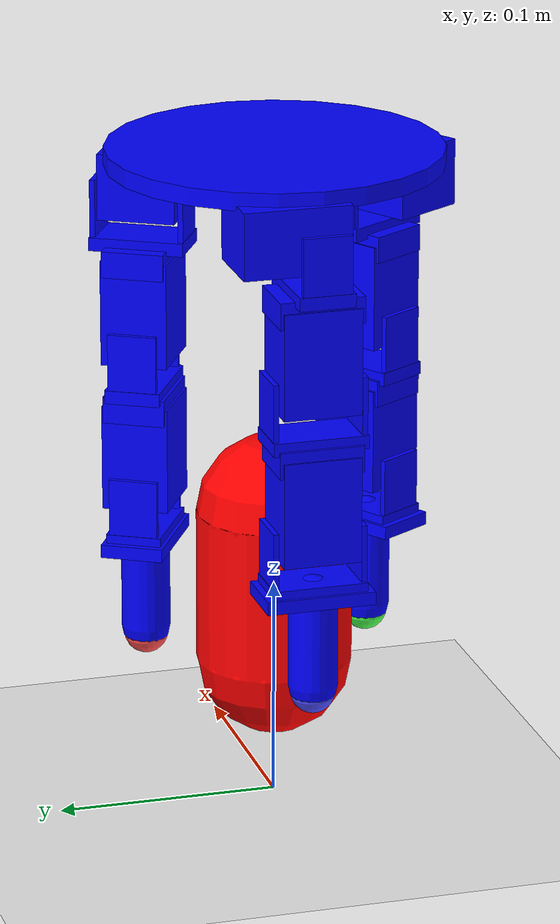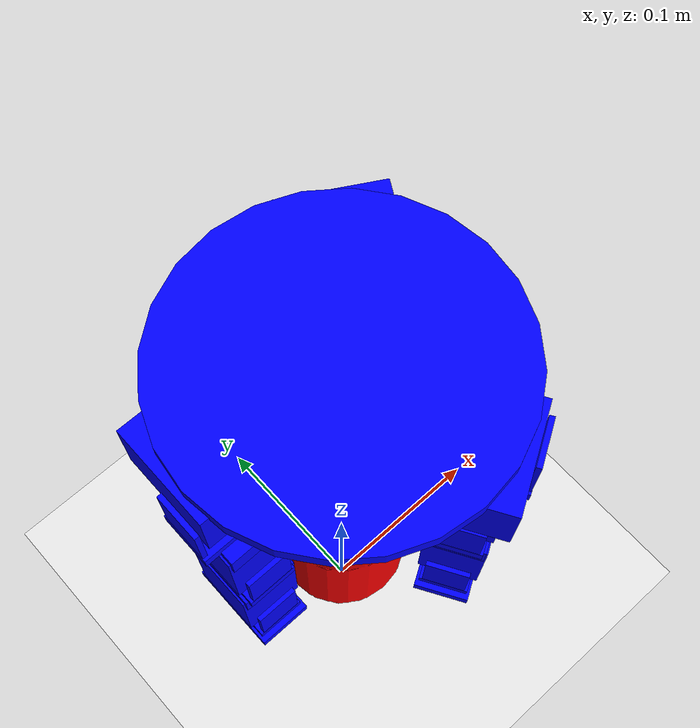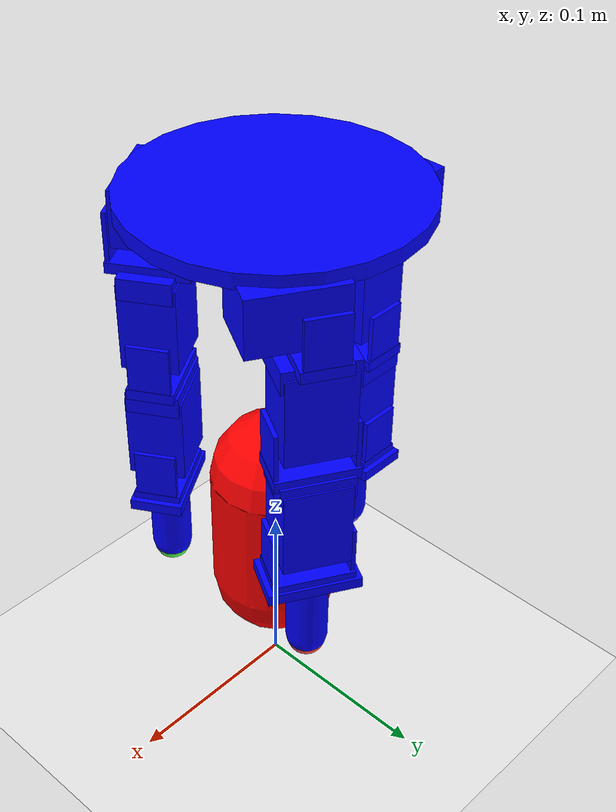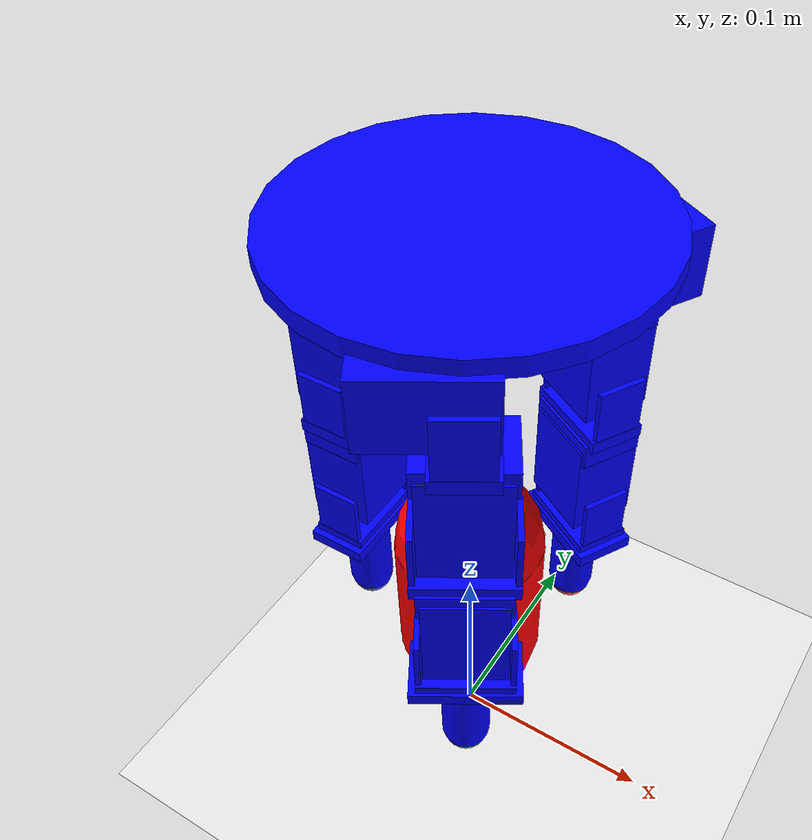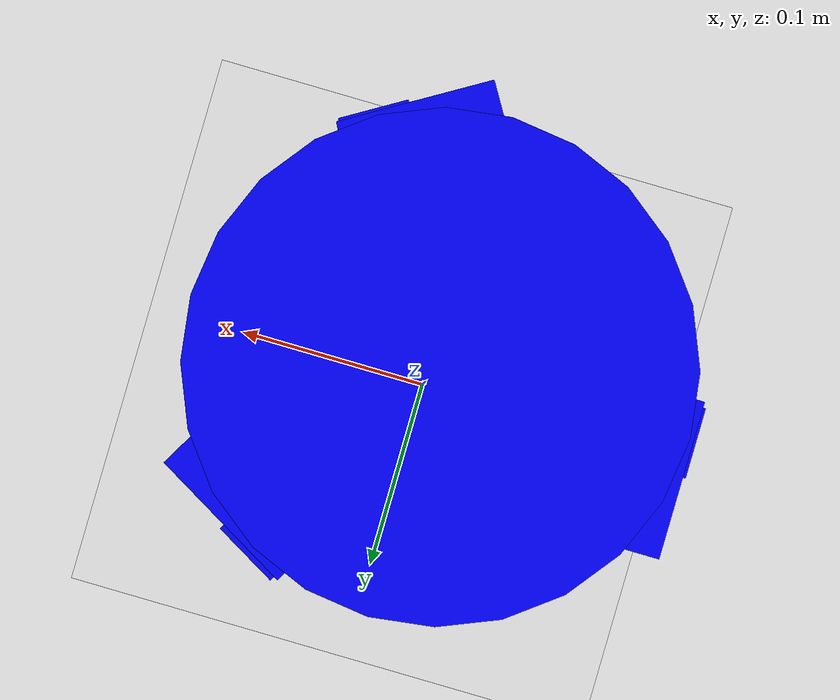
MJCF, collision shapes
<mujoco model="dclaw3xh">
  <compiler meshdir="."/>
  <include file="assets/dependencies3xh.xml"/>
  <include file="../scenes/basic_scene.xml"/>

  <worldbody>
    <body name="mount" pos="0 0 .30">
      <include file="assets/chain3xh.xml"/>

      <geom name="red_box" pos="0 0 -0.2" type="capsule"  size=".035 .035 .035" rgba="1 0 0 1" mass=".002" />
    </body>
  </worldbody>
</mujoco>

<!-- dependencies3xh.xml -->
<mujocoinclude>
  <compiler angle="radian" inertiafromgeom="auto" inertiagrouprange="3 5"/>
  <option integrator="RK4" timestep="0.001" iterations="50" tolerance="1e-10" jacobian="dense" cone="elliptic">
    <flag contact="enable"/>
  </option>
  <asset>
    <mesh name="xh28" file="../dclaw/meshes/xh_base_high_poly.stl" scale=".001 .001 .001"/>
    <mesh name="acrylic_circle" file="../dclaw/meshes/acrylic_circle.stl" scale=".1 .1 .1"/>
    <mesh name="plastic_finger" file="../dclaw/meshes/xh_finger_tip.stl" scale=".001 .001 .001"/>
    <mesh name="metal_clamping" file="../dclaw/meshes/xh_clamping_high_poly.stl" scale=".001 .001 .001"/>
    <mesh name="metal_clamping_small" file="../dclaw/meshes/xh_clamping_small_high_poly.stl" scale=".001 .001 .001"/>
    <mesh name="plastic_top" file="../dclaw/meshes/xh_white_top_high_poly.stl" scale=".001 .001 .001"/>
    <mesh name="xh28_hull" file="../dclaw/meshes/xh_base_hull.stl" scale=".001 .001 .001"/>
    <mesh name="xh28_hull_top" file="../dclaw/meshes/xh_base_hull_top.stl" scale=".001 .001 .001"/>
  </asset>
  <default>
    <default class="dclaw3xh">
      <joint limited="true" damping=".1" armature="0.001"/>
      <geom contype="0" conaffinity="0" condim="4" group="1" margin="0.0005" material="metal_black" type="mesh"/>
      <motor ctrlrange="-1.57 1.57" ctrllimited="true"/>
      <site group="1"/>
      <default class="overlay">
        <geom contype="0" conaffinity="0" group="3" type="mesh" material="greenish"/>
        <joint damping="100" frictionloss="100" armature="0"/>
        <site group="3"/>
      </default>
      <default class="phy_metal">
        <geom contype="1" conaffinity="1" group="4" type="mesh" rgba="0.0 0.0 1.0 .3"/>
        <site group="4"/>
      </default>
      <default class="phy_plastic">
        <geom contype="1" conaffinity="1" group="4" type="mesh" rgba="0.0 0.0 1.0 .3" friction=".2 0.005 0.0001"/>
        <site group="4"/>
      </default>
    </default>
  </default>
  <asset>
    <material name="metal_black" specular="1" shininess="1" rgba="0.2 0.2 0.2 1.0"/>
    <material name="metal_grey" specular="1" shininess="1" rgba="0.5 0.5 0.5 1.0"/>
    <material name="plastic" specular="0.3" shininess="0" rgba="1 1 1 1"/>
    <material name="acrylic" specular="0.3" shininess="0" rgba="1 1 1 .2"/>
    <material name="greenish" specular="0.0" shininess="0" rgba="0.3 1 0.3 1"/>
  </asset>
  <actuator>
    <general name="FFJ10" joint="FFJ10" biasprm="0" gainprm="0" dynprm="0"  dyntype="user" biastype="user" gaintype="user" class="dclaw3xh"/>
    <general name="FFJ11" joint="FFJ11" biasprm="0" gainprm="0" dynprm="0"  dyntype="user" biastype="user" gaintype="user" class="dclaw3xh"/>
    <general name="FFJ12" joint="FFJ12" biasprm="0" gainprm="0" dynprm="0"  dyntype="user" biastype="user" gaintype="user" class="dclaw3xh"/>
    <general name="MFJ20" joint="MFJ20" biasprm="0" gainprm="0" dynprm="0"  dyntype="user" biastype="user" gaintype="user" class="dclaw3xh"/>
    <general name="MFJ21" joint="MFJ21" biasprm="0" gainprm="0" dynprm="0"  dyntype="user" biastype="user" gaintype="user" class="dclaw3xh"/>
    <general name="MFJ22" joint="MFJ22" biasprm="0" gainprm="0" dynprm="0"  dyntype="user" biastype="user" gaintype="user" class="dclaw3xh"/>
    <general name="THJ30" joint="THJ30" biasprm="0" gainprm="0" dynprm="0"  dyntype="user" biastype="user" gaintype="user" class="dclaw3xh"/>
    <general name="THJ31" joint="THJ31" biasprm="0" gainprm="0" dynprm="0"  dyntype="user" biastype="user" gaintype="user" class="dclaw3xh"/>
    <general name="THJ32" joint="THJ32" biasprm="0" gainprm="0" dynprm="0"  dyntype="user" biastype="user" gaintype="user" class="dclaw3xh"/>
  </actuator>

  <sensor>
    <jointpos name="FFJ10_pos_sensor" joint="FFJ10"/>
    <jointpos name="FFJ11_pos_sensor" joint="FFJ11"/>
    <jointpos name="FFJ12_pos_sensor" joint="FFJ12"/>
    <jointpos name="MFJ20_pos_sensor" joint="MFJ20"/>
    <jointpos name="MFJ21_pos_sensor" joint="MFJ21"/>
    <jointpos name="MFJ22_pos_sensor" joint="MFJ22"/>
    <jointpos name="THJ30_pos_sensor" joint="THJ30"/>
    <jointpos name="THJ31_pos_sensor" joint="THJ31"/>
    <jointpos name="THJ32_pos_sensor" joint="THJ32"/>
    <force name="ft_sensor_force1" site="FFtip"/>
    <force name="ft_sensor_force2" site="MFtip"/>
    <force name="ft_sensor_force3" site="THtip"/>
    <torque name="ft_sensor_torque" site="FFtip"/>
  </sensor>
</mujocoinclude>

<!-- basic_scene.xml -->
<mujocoinclude>
  <asset>
    <texture name="skybox" type="skybox" builtin="gradient" rgb1=".08 .09 .10" rgb2="0 0 0" width="800" height="800" mark="random" markrgb=".8 .8 .8"/>
    <texture name="texplane" type="2d" height="1" width="1" file="../scenes/textures/white_marble_tile2.png"/>
    <material name="MatPlane" reflectance="0.05" texture="texplane" texrepeat="4 4" texuniform="true"/>
  </asset>
  <visual>
    <map fogstart="1.5" fogend="5" force="0.1" znear="0.1"/>
    <quality shadowsize="4096" offsamples="4"/>
  </visual>
  <worldbody>
    <light directional="true" diffuse=".3 .3 .3" specular="0.3 0.3 0.3" pos="-1 -1 1" dir="1 1 -1"/>
    <light directional="true" diffuse=".3 .3 .3" specular="0.3 0.3 0.3" pos="1 -1 1" dir="-1 1 -1"/>
    <light directional="true" diffuse=".3 .3 .3" specular="0.3 0.3 0.3" pos="0 1 1" dir="0 -1 -1"/>
    <geom name="floor" pos="0 0 0" size="5 5 .1" conaffinity="1" contype="1" type="plane" material="MatPlane" condim="3"/>
  </worldbody>
</mujocoinclude>

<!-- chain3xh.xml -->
<mujocoinclude>
  <body name="dClaw" euler="3.14 0 0" childclass="dclaw3xh">
    <geom material="acrylic" mesh="acrylic_circle"/>
    <geom class="phy_metal" type="cylinder" size="0.075 0.004" mass=".11"/>
    <!-- INDEX/FIRST FINGER -->
    <body name="FFbase" pos=".03 -0.052 .003" euler="0 0 .52">
      <geom mesh="xh28" pos="0 0 0.01425" euler="1.57 0 1.57"/>
      <geom class="phy_metal" type="box" pos=".012 0 0.014" size="0.024 0.0175 0.015" mass=".093"/>
      <body name="FF10" pos="0 0 0.01425" euler="0 0 3.14">
        <geom mesh="metal_clamping" euler="0 0 1.57"/>
        <geom mesh="metal_clamping_small" pos="0 0 0.055" euler="3.14 0 0"/>
        <geom mesh="xh28" pos="0 0 0.068" euler="1.57 1.57 0"/>
        <geom class="phy_metal" type="box" pos="0 0 0.056" size="0.0175 0.015 0.024" mass=".093"/>
        <geom class="phy_metal" type="box" pos="0.0 0 0.026" size="0.0125 0.0214 0.003" mass=".003"/>
        <geom class="phy_metal" type="box" pos="0 0.02 0.013" size="0.011 0.0012 0.016" mass=".002"/>
        <geom class="phy_metal" type="box" pos="0 -0.02 0.013" size="0.011 0.0012 0.016" mass=".002"/>
        <geom class="phy_metal" type="box" pos="0 0 0.033" size="0.019 0.014 0.006" mass=".005"/>
        <joint name="FFJ10" type="hinge" axis="0 1 0" range="-.45 1.35"/>
        <body name="FFL11" pos="0 0 0.0675">
          <geom mesh="metal_clamping_small" pos="0 0 0.055" euler="3.14 0 0"/>
          <geom mesh="xh28" pos="0 0 0.0686" euler="1.57 1.57 0"/>
          <geom mesh="metal_clamping"/>
          <geom class="phy_metal" type="box" pos="0 0 0.056" size="0.0175 0.015 0.024" mass=".093"/>
          <geom class="phy_metal" type="box" pos="0 0 0.026" size="0.0214 0.0125 0.003" mass=".003"/>
          <geom class="phy_metal" type="box" pos="0.02 0 0.013" size="0.0012 0.011 0.016" mass=".002"/>
          <geom class="phy_metal" type="box" pos="-0.02 0 0.013" size="0.0012 0.011 0.016" mass=".002"/>
          <geom class="phy_metal" type="box" pos="0 0 0.033" size="0.019 0.014 0.006" mass=".005"/>
          <joint name="FFJ11" type="hinge" axis="1 0 0" range="-2 2"/>
          <body name="FFL12" pos="0 0 0.068">
            <geom mesh="metal_clamping"/>
            <geom material="plastic" mesh="plastic_finger" pos="0 0 0.046"/>
            <geom class="phy_metal" type="box" pos="0.0 0 0.026" size="0.0214 0.0125 0.003" mass=".003"/>
            <geom class="phy_metal" type="box" pos="0.02 0 0.013" size="0.0012 0.011 0.016" mass=".002"/>
            <geom class="phy_metal" type="box" pos="-0.02 0 0.013" size="0.0012 0.011 0.016" mass=".002"/>
            <geom class="phy_plastic" type="capsule" pos="0 0 0.053" size="0.011 0.02" mass=".018"/>
            <geom class="phy_plastic" type="box" pos="0 0 0.03" size="0.0245 0.014 0.003" mass=".007"/>
            <joint name="FFJ12" type="hinge" axis="1 0 0" range="-2 2"/>
            <site name="FFtip" type="sphere" pos="0 0 .076" size="0.01" rgba="1 .3 .3 1"/>
          </body>
        </body>
      </body>
    </body>
    <!-- MIDDLE FINGER -->
    <body name="MFbase" pos=".03 0.052 .003" euler="0 0 2.6">
      <geom mesh="xh28" pos="0 0 0.01425" euler="1.57 0 1.57"/>
      <geom class="phy_metal" type="box" pos=".012 0 0.014" size="0.024 0.0175 0.015" mass=".093"/>
      <body name="MF20" pos="0 0 0.01425" euler="0 0 3.14">
        <geom mesh="metal_clamping" euler="0 0 1.57"/>
        <geom mesh="metal_clamping_small" pos="0 0 0.055" euler="3.14 0 0"/>
        <geom mesh="xh28" pos="0 0 0.068" euler="1.57 1.57 0"/>
        <geom class="phy_metal" type="box" pos="0 0 0.056" size="0.0175 0.015 0.024" mass=".093"/>
        <geom class="phy_metal" type="box" pos="0.0 0 0.026" size="0.0125 0.0214 0.003" mass=".003"/>
        <geom class="phy_metal" type="box" pos="0 0.02 0.013" size="0.011 0.0012 0.016" mass=".002"/>
        <geom class="phy_metal" type="box" pos="0 -0.02 0.013" size="0.011 0.0012 0.016" mass=".002"/>
        <geom class="phy_metal" type="box" pos="0 0 0.033" size="0.019 0.014 0.006" mass=".005"/>
        <joint name="MFJ20" type="hinge" axis="0 1 0" range="-.45 1.35"/>
        <body name="MFL21" pos="0 0 0.0675">
          <geom mesh="metal_clamping_small" pos="0 0 0.055" euler="3.14 0 0"/>
          <geom mesh="xh28" pos="0 0 0.0686" euler="1.57 1.57 0"/>
          <geom mesh="metal_clamping"/>
          <geom class="phy_metal" type="box" pos="0 0 0.056" size="0.0175 0.015 0.024" mass=".093"/>
          <geom class="phy_metal" type="box" pos="0 0 0.026" size="0.0214 0.0125 0.003" mass=".003"/>
          <geom class="phy_metal" type="box" pos="0.02 0 0.013" size="0.0012 0.011 0.016" mass=".002"/>
          <geom class="phy_metal" type="box" pos="-0.02 0 0.013" size="0.0012 0.011 0.016" mass=".002"/>
          <geom class="phy_metal" type="box" pos="0 0 0.033" size="0.019 0.014 0.006" mass=".005"/>
          <joint name="MFJ21" type="hinge" axis="1 0 0" range="-2 2"/>
          <body name="MFL22" pos="0 0 0.068">
            <geom mesh="metal_clamping"/>
            <geom material="plastic" mesh="plastic_finger" pos="0 0 0.046"/>
            <geom class="phy_metal" type="box" pos="0.0 0 0.026" size="0.0214 0.0125 0.003" mass=".003"/>
            <geom class="phy_metal" type="box" pos="0.02 0 0.013" size="0.0012 0.011 0.016" mass=".002"/>
            <geom class="phy_metal" type="box" pos="-0.02 0 0.013" size="0.0012 0.011 0.016" mass=".002"/>
            <geom class="phy_plastic" type="capsule" pos="0 0 0.053" size="0.011 0.02" mass=".018"/>
            <geom class="phy_plastic" type="box" pos="0 0 0.03" size="0.0245 0.014 0.003" mass=".007"/>
            <joint name="MFJ22" type="hinge" axis="1 0 0" range="-2 2"/>
            <site name="MFtip" type="sphere" pos="0 0 .076" size="0.01" rgba=".3 1 .3 1"/>
          </body>
        </body>
      </body>
    </body>
    <!-- THUMB -->
    <body name="THbase" pos="-.06 0 .003" euler="0 0 -1.57">
      <geom mesh="xh28" pos="0 0 0.01425" euler="1.57 0 1.57"/>
      <geom class="phy_metal" type="box" pos=".012 0 0.014" size="0.024 0.0175 0.015" mass=".093"/>
      <body name="TH30" pos="0 0 0.01425" euler="0 0 3.14">
        <geom mesh="metal_clamping" euler="0 0 1.57"/>
        <geom mesh="metal_clamping_small" pos="0 0 0.055" euler="3.14 0 0"/>
        <geom mesh="xh28" pos="0 0 0.068" euler="1.57 1.57 0"/>
        <geom class="phy_metal" type="box" pos="0 0 0.056" size="0.0175 0.015 0.024" mass=".093"/>
        <geom class="phy_metal" type="box" pos="0.0 0 0.026" size="0.0125 0.0214 0.003" mass=".003"/>
        <geom class="phy_metal" type="box" pos="0 0.02 0.013" size="0.011 0.0012 0.016" mass=".002"/>
        <geom class="phy_metal" type="box" pos="0 -0.02 0.013" size="0.011 0.0012 0.016" mass=".002"/>
        <geom class="phy_metal" type="box" pos="0 0 0.033" size="0.019 0.014 0.006" mass=".005"/>
        <joint name="THJ30" type="hinge" axis="0 1 0" range="-.45 1.35"/>
        <body name="THL31" pos="0 0 0.0675">
          <geom mesh="metal_clamping_small" pos="0 0 0.055" euler="3.14 0 0"/>
          <geom mesh="xh28" pos="0 0 0.0686" euler="1.57 1.57 0"/>
          <geom mesh="metal_clamping"/>
          <geom class="phy_metal" type="box" pos="0 0 0.056" size="0.0175 0.015 0.024" mass=".093"/>
          <geom class="phy_metal" type="box" pos="0 0 0.026" size="0.0214 0.0125 0.003" mass=".003"/>
          <geom class="phy_metal" type="box" pos="0.02 0 0.013" size="0.0012 0.011 0.016" mass=".002"/>
          <geom class="phy_metal" type="box" pos="-0.02 0 0.013" size="0.0012 0.011 0.016" mass=".002"/>
          <geom class="phy_metal" type="box" pos="0 0 0.033" size="0.019 0.014 0.006" mass=".005"/>
          <joint name="THJ31" type="hinge" axis="1 0 0" range="-2 2"/>
          <body name="THL32" pos="0 0 0.068">
            <geom mesh="metal_clamping"/>
            <geom material="plastic" mesh="plastic_finger" pos="0 0 0.046"/>
            <geom class="phy_metal" type="box" pos="0.0 0 0.026" size="0.0214 0.0125 0.003" mass=".003"/>
            <geom class="phy_metal" type="box" pos="0.02 0 0.013" size="0.0012 0.011 0.016" mass=".002"/>
            <geom class="phy_metal" type="box" pos="-0.02 0 0.013" size="0.0012 0.011 0.016" mass=".002"/>
            <geom class="phy_plastic" type="capsule" pos="0 0 0.053" size="0.011 0.02" mass=".018"/>
            <geom class="phy_plastic" type="box" pos="0 0 0.03" size="0.0245 0.014 0.003" mass=".007"/>
            <joint name="THJ32" type="hinge" axis="1 0 0" range="-2 2"/>
            <site name="THtip" type="sphere" pos="0 0 .076" size="0.01" rgba=".3 .3 1 1"/>
          </body>
        </body>
      </body>
    </body>
  </body>

</mujocoinclude>
